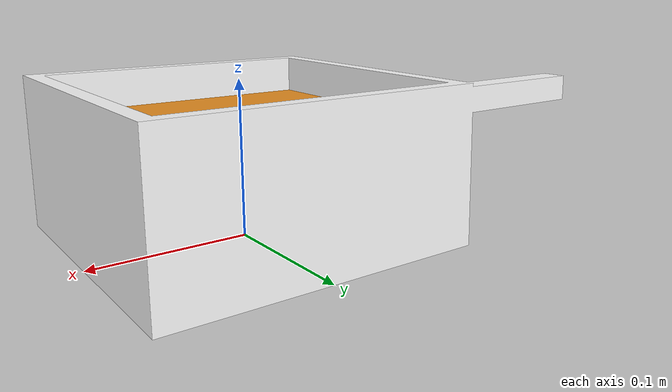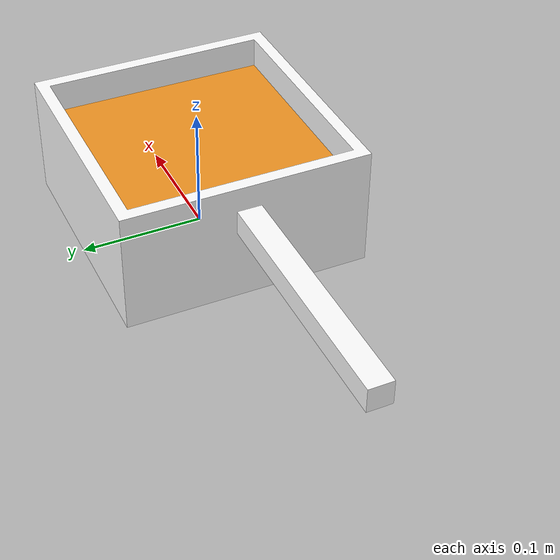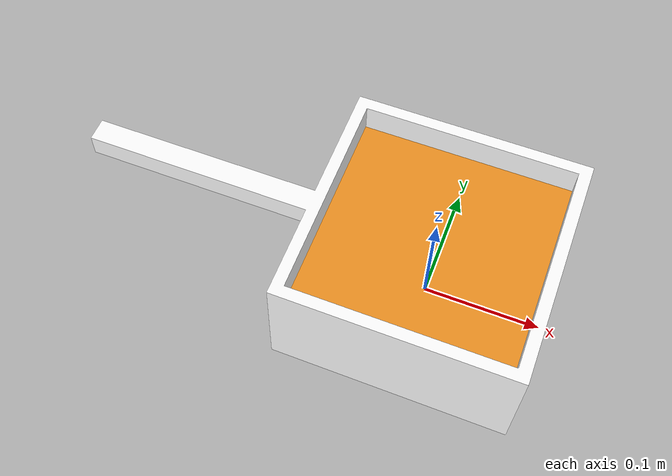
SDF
<?xml version='1.0'?>
<sdf version='1.6'>
  <model name='pot'>
    <static>true</static>
    <link name='link'>
      <collision name='collision'>
        <geometry>
          <mesh>
            <uri>model://pot/meshes/model.stl</uri>
          </mesh>
        </geometry>
      </collision>
      <visual name='pot'>
        <geometry>
          <mesh>
            <uri>model://pot/meshes/model.stl</uri>
          </mesh>
        </geometry>
        <material>
          <ambient>1 1 1 1</ambient>
          <diffuse>1 1 1 1</diffuse>
          <specular>0.1 0.1 0.1 1</specular>
          <emissive>0 0 0 1</emissive>
        </material>
      </visual>
      <visual name='soup'>
        <geometry>
          <mesh>
            <uri>model://pot/meshes/soup.stl</uri>
          </mesh>
        </geometry>
        <material>
          <ambient>1 1 1 1</ambient>
          <diffuse>0.93 0.57 0.13 1</diffuse>
          <specular>0.1 0.1 0.1 1</specular>
          <emissive>0 0 0 1</emissive>
        </material>
      </visual>
    </link>
  </model>
</sdf>
